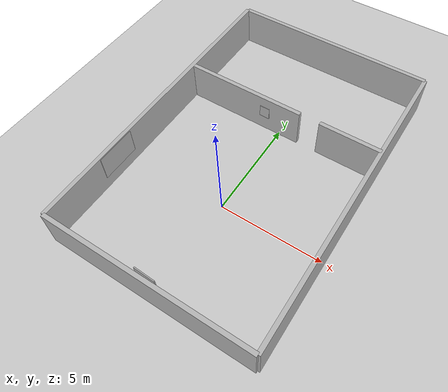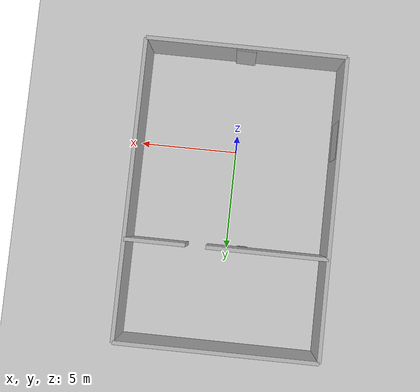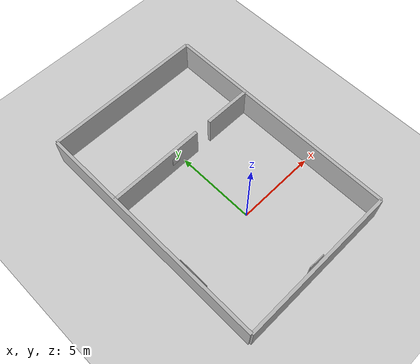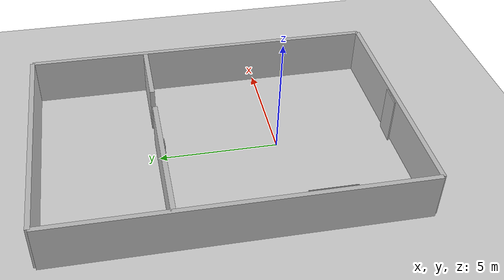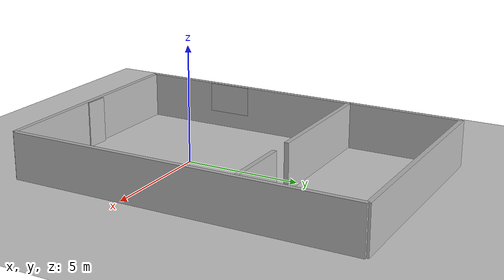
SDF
<sdf version="1.7">
 <world name="default">
  <physics type="ode">
   <ode>
    <solver>
     <type>quick</type>
     <iters>20</iters>
     <sor>1</sor>
     <use_dynamic_moi_rescaling>0</use_dynamic_moi_rescaling>
    </solver>
    <constraints>
     <cfm>0</cfm>
     <erp>0.2</erp>
     <contact_max_correcting_vel>100</contact_max_correcting_vel>
     <contact_surface_layer>0</contact_surface_layer>
    </constraints>
   </ode>
   <real_time_update_rate>1000</real_time_update_rate>
   <max_step_size>0.001</max_step_size>
   <real_time_factor>1</real_time_factor>
  </physics>
  <light name="sun" type="directional">
   <pose>0 0 10 0 -0 0</pose>
   <diffuse>0.8 0.8 0.8 1</diffuse>
   <specular>0.2 0.2 0.2 1</specular>
   <attenuation>
    <range>1000</range>
    <constant>0.9</constant>
    <linear>0.01</linear>
    <quadratic>0.001</quadratic>
   </attenuation>
   <direction>-0.5 0.1 -0.9</direction>
   <spot><inner_angle>0</inner_angle><outer_angle>0</outer_angle><falloff>0</falloff></spot>
  </light>
  <model name="ground_plane">
   <static>1</static>
   <link name="link">
    <collision name="collision">
     <geometry><plane><normal>0 0 1</normal><size>100 100</size></plane></geometry>
     <surface>
      <contact><collide_bitmask>65535</collide_bitmask></contact>
      <friction><ode><mu>100</mu><mu2>50</mu2></ode></friction>
     </surface>
    </collision>
    <visual name="visual">
     <cast_shadows>0</cast_shadows>
     <geometry><plane><normal>0 0 1</normal><size>100 100</size></plane></geometry>
     <material>
      <script><uri>file://media/materials/scripts/gazebo.material</uri><name>Gazebo/Grey</name></script>
     </material>
    </visual>
   </link>
  </model>
  <model name="wall_1_model">
   <pose>0 -5 1 0 -0 0</pose>
   <static>1</static>
   <link name="wall_1_body">
    <inertial>
     <mass>1</mass>
     <inertia><ixx>1</ixx><ixy>0</ixy><ixz>0</ixz><iyy>1</iyy><iyz>0</iyz><izz>1</izz></inertia>
    </inertial>
    <collision name="collision"><geometry><box><size>10 0.2 2</size></box></geometry></collision>
    <visual name="visual"><geometry><box><size>10 0.2 2</size></box></geometry></visual>
   </link>
  </model>
  <model name="wall_2_model">
   <pose>0 10 1 0 -0 0</pose>
   <static>1</static>
   <link name="wall_2_body">
    <inertial>
     <mass>1</mass>
     <inertia><ixx>1</ixx><ixy>0</ixy><ixz>0</ixz><iyy>1</iyy><iyz>0</iyz><izz>1</izz></inertia>
    </inertial>
    <collision name="collision"><geometry><box><size>10 0.2 2</size></box></geometry></collision>
    <visual name="visual"><geometry><box><size>10 0.2 2</size></box></geometry></visual>
   </link>
  </model>
  <model name="wall_3_model">
   <pose>-5 2.5 1 0 -0 0</pose>
   <static>1</static>
   <link name="wall_3_body">
    <inertial>
     <mass>1</mass>
     <inertia><ixx>1</ixx><ixy>0</ixy><ixz>0</ixz><iyy>1</iyy><iyz>0</iyz><izz>1</izz></inertia>
    </inertial>
    <collision name="collision"><geometry><box><size>0.2 15 2</size></box></geometry></collision>
    <visual name="visual"><geometry><box><size>0.2 15 2</size></box></geometry></visual>
   </link>
  </model>
  <model name="wall_4_model">
   <pose>5 2.5 1 0 -0 0</pose>
   <static>1</static>
   <link name="wall_4_body">
    <inertial>
     <mass>1</mass>
     <inertia><ixx>1</ixx><ixy>0</ixy><ixz>0</ixz><iyy>1</iyy><iyz>0</iyz><izz>1</izz></inertia>
    </inertial>
    <collision name="collision"><geometry><box><size>0.2 15 2</size></box></geometry></collision>
    <visual name="visual"><geometry><box><size>0.2 15 2</size></box></geometry></visual>
   </link>
  </model>
  <model name="wall_5_model">
   <pose>-2 5 1 0 -0 0</pose>
   <static>1</static>
   <link name="wall_5_body">
    <inertial>
     <mass>1</mass>
     <inertia><ixx>1</ixx><ixy>0</ixy><ixz>0</ixz><iyy>1</iyy><iyz>0</iyz><izz>1</izz></inertia>
    </inertial>
    <collision name="collision"><geometry><box><size>6 0.2 2</size></box></geometry></collision>
    <visual name="visual"><geometry><box><size>6 0.2 2</size></box></geometry></visual>
   </link>
  </model>
  <model name="wall_6_model">
   <pose>3.5 5 1 0 -0 0</pose>
   <static>1</static>
   <link name="wall_6_body">
    <inertial>
     <mass>1</mass>
     <inertia><ixx>1</ixx><ixy>0</ixy><ixz>0</ixz><iyy>1</iyy><iyz>0</iyz><izz>1</izz></inertia>
    </inertial>
    <collision name="collision"><geometry><box><size>3 0.2 2</size></box></geometry></collision>
    <visual name="visual"><geometry><box><size>3 0.2 2</size></box></geometry></visual>
   </link>
  </model>
  <model name="pal_poster">
   <static>1</static>
   <link name="link">
    <visual name="visual">
     <geometry><box><size>0.02 0.5 0.644</size></box></geometry>
     <material>
      <script>
       <uri>model://pal_poster/material/scripts</uri>
       <uri>model://pal_poster/material/textures</uri>
       <name>Custom/pal_poster</name>
      </script>
     </material>
    </visual>
   </link>
   <pose>-0.78 4.83 1.2 0 0 -1.57</pose>
  </model>
  <model name="aruco_board">
   <static>1</static>
   <link name="marker">
    <visual name="visual">
     <geometry><box><size>0.02 1.9 1.3</size></box></geometry>
     <material>
      <script>
       <uri>model://aruco_board/material/scripts</uri>
       <uri>model://aruco_board/material/textures</uri>
       <name>Aruco/aruco_board</name>
      </script>
     </material>
    </visual>
    <gravity>0</gravity>
   </link>
   <pose>-4.85 -0.86 1.35 0 -0 0</pose>
  </model>
  <model name="yolo">
   <static>1</static>
   <link name="link">
    <visual name="visual">
     <geometry><box><size>0.02 1.12 0.8</size></box></geometry>
     <material>
      <script>
       <uri>model://yolo/material/scripts</uri>
       <uri>model://yolo/material/textures</uri>
       <name>wallWithTrollFace</name>
      </script>
     </material>
    </visual>
    <collision name="collision"><geometry><box><size>0.02 1.12 0.8</size></box></geometry></collision>
    <gravity>0</gravity>
   </link>
   <pose>-4.90292 -0.926691 1.35788 0 -0 0</pose>
  </model>
  <model name="table">
   <link name="wallWithREEMphoto_body">
    <inertial>
     <mass>4</mass>
     <inertia><ixx>1</ixx><ixy>0</ixy><ixz>0</ixz><iyy>1</iyy><iyz>0</iyz><izz>1</izz></inertia>
    </inertial>
    <collision name="collision"><geometry><box><size>0.05 1 2</size></box></geometry></collision>
    <visual name="visual">
     <geometry><box><size>0.05 1 2</size></box></geometry>
     <material>
      <script>
       <uri>model://wall_with_reem_photo/material/scripts</uri>
       <uri>model://wall_with_reem_photo/material/textures</uri>
       <name>Custom/REEM_photo0</name>
      </script>
     </material>
    </visual>
   </link>
   <pose>-0.025894 -4.80869 0.999999 -2e-06 -2e-06 -1.60581</pose>
  </model>
  <gravity>0 0 -9.81</gravity>
  <magnetic_field>6e-06 2.3e-05 -4.2e-05</magnetic_field>
  <atmosphere type="adiabatic"/>
  <scene><ambient>0.4 0.4 0.4 1</ambient><background>0.7 0.7 0.7 1</background><shadows>1</shadows></scene>
  <spherical_coordinates>
   <surface_model>EARTH_WGS84</surface_model>
   <latitude_deg>0</latitude_deg>
   <longitude_deg>0</longitude_deg>
   <elevation>0</elevation>
   <heading_deg>0</heading_deg>
  </spherical_coordinates>
 </world>
</sdf>
